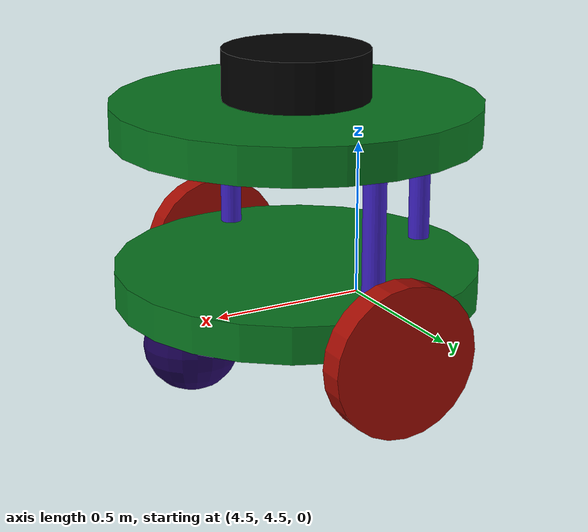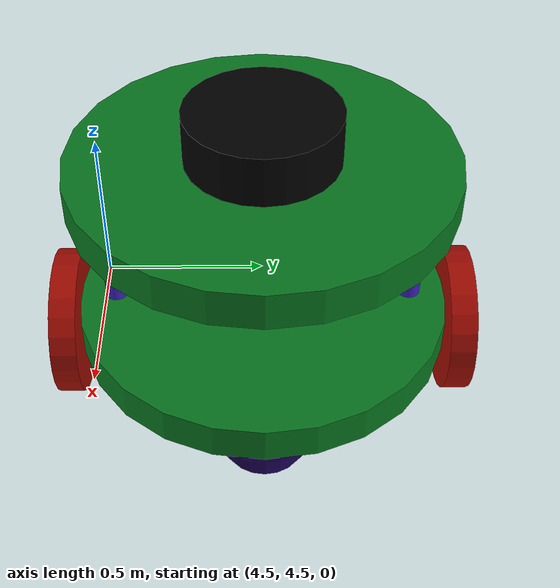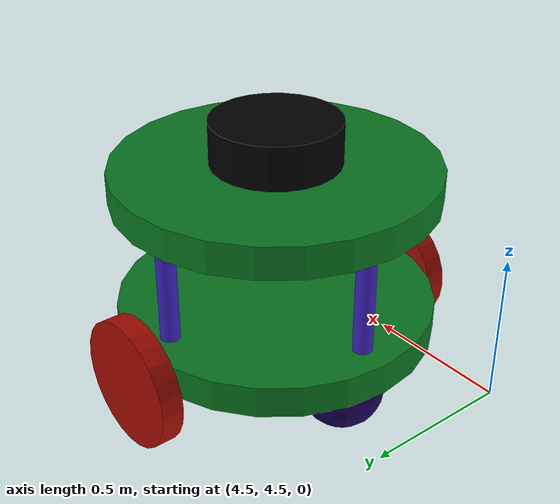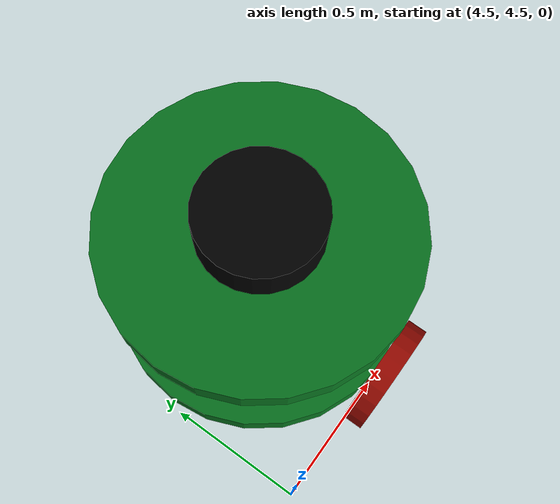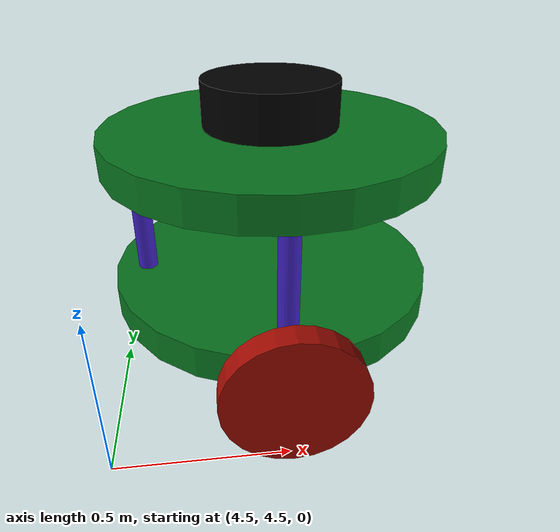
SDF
<sdf version="1.7">
 <world name="world_demo">
  <physics name="1ms" type="ignored">
   <max_step_size>0.01</max_step_size>
   <real_time_factor>1</real_time_factor>
  </physics>
  <plugin name="ignition::gazebo::systems::Physics" filename="libignition-gazebo-physics-system.so"/>
  <plugin name="ignition::gazebo::systems::UserCommands" filename="libignition-gazebo-user-commands-system.so"/>
  <plugin name="ignition::gazebo::systems::SceneBroadcaster" filename="libignition-gazebo-scene-broadcaster-system.so"/>
  <plugin name="ignition::gazebo::systems::Imu" filename="ignition-gazebo-imu-system"/>
  <plugin name="ignition::gazebo::systems::Sensors" filename="ignition-gazebo-sensors-system">
   <render_engine>ogre2</render_engine>
  </plugin>
  <scene>
   <ambient>1 1 1 1</ambient>
   <background>0.3 0.7 0.9 1</background>
   <shadows>0</shadows>
   <grid>1</grid>
  </scene>
  <model name="ground_plane">
   <static>1</static>
   <link name="link">
    <collision name="collision">
     <geometry><plane><normal>0 0 1</normal><size>1 1</size></plane></geometry>
    </collision>
   </link>
  </model>
  <model name="depot_collision">
   <static>1</static>
   <pose>7.19009 1.09982 0 0 0 0</pose>
   <link name="collision_link">
    <collision name="wall1">
     <pose>0 -7.6129 4.5 0 0 0</pose>
     <geometry><box><size>30.167 0.08 9</size></box></geometry>
    </collision>
    <collision name="wall2">
     <pose>0 7.2875 4.5 0 0 0</pose>
     <geometry><box><size>30.167 0.08 9</size></box></geometry>
    </collision>
    <collision name="wall3">
     <pose>-15 0 4.5 0 0 0</pose>
     <geometry><box><size>0.08 15.360 9</size></box></geometry>
    </collision>
    <collision name="wall4">
     <pose>15 0 4.5 0 0 0</pose>
     <geometry><box><size>0.08 15.360 9</size></box></geometry>
    </collision>
    <collision name="boxes1">
     <pose>0.22268 -4.7268 0.68506 0 0 0</pose>
     <geometry><box><size>1.288 1.422 1.288</size></box></geometry>
    </collision>
    <collision name="boxes2">
     <pose>3.1727 -4.7268 0.68506 0 0 0</pose>
     <geometry><box><size>1.288 1.422 1.288</size></box></geometry>
    </collision>
    <collision name="boxes3">
     <pose>5.95268 -4.7268 0.68506 0 0 0</pose>
     <geometry><box><size>1.288 1.422 1.288</size></box></geometry>
    </collision>
    <collision name="boxes4">
     <pose>8.55887 -4.7268 0.68506 0 0 0</pose>
     <geometry><box><size>1.288 1.422 1.288</size></box></geometry>
    </collision>
    <collision name="boxes5">
     <pose>11.326 -4.7268 0.68506 0 0 0</pose>
     <geometry><box><size>1.288 1.422 1.288</size></box></geometry>
    </collision>
    <collision name="boxes6">
     <pose>0.22268 -2.37448 0.68506 0 0 0</pose>
     <geometry><box><size>1.288 1.422 1.288</size></box></geometry>
    </collision>
    <collision name="boxes7">
     <pose>3.1727 -2.37448 0.68506 0 0 0</pose>
     <geometry><box><size>1.288 1.422 1.288</size></box></geometry>
    </collision>
    <collision name="boxes8">
     <pose>5.95268 -2.37448 0.68506 0 0 0</pose>
     <geometry><box><size>1.288 1.422 1.288</size></box></geometry>
    </collision>
    <collision name="boxes9">
     <pose>8.55887 -2.37448 0.68506 0 0 0</pose>
     <geometry><box><size>1.288 1.422 1.288</size></box></geometry>
    </collision>
    <collision name="boxes10">
     <pose>11.326 -2.37448 0.68506 0 0 0</pose>
     <geometry><box><size>1.288 1.422 1.288</size></box></geometry>
    </collision>
    <collision name="boxes11">
     <pose>-1.2268 4.1557 0.68506 0 0 -1.02799893</pose>
     <geometry><box><size>1.288 1.422 1.288</size></box></geometry>
    </collision>
    <collision name="pilar1">
     <pose>-7.5402 3.6151 1 0 0 0</pose>
     <geometry><box><size>0.465 0.465 2</size></box></geometry>
    </collision>
    <collision name="pilar2">
     <pose>7.4575 3.6151 1 0 0 0</pose>
     <geometry><box><size>0.465 0.465 2</size></box></geometry>
    </collision>
    <collision name="pilar3">
     <pose>-7.5402 -3.8857 1 0 0 0</pose>
     <geometry><box><size>0.465 0.465 2</size></box></geometry>
    </collision>
    <collision name="pilar4">
     <pose>7.4575 -3.8857 1 0 0 0</pose>
     <geometry><box><size>0.465 0.465 2</size></box></geometry>
    </collision>
    <collision name="pallet_mover1">
     <pose>-0.6144 -2.389 0.41838 0 0 0</pose>
     <geometry><box><size>0.363 0.440 0.719</size></box></geometry>
    </collision>
    <collision name="pallet_mover2">
     <pose>-1.6004 4.8225 0.41838 0 0 0</pose>
     <geometry><box><size>0.363 0.244 0.719</size></box></geometry>
    </collision>
    <collision name="stairs">
     <pose>13.018 3.1652 0.25 0 0 0</pose>
     <geometry><box><size>1.299 0.6 0.5</size></box></geometry>
    </collision>
    <collision name="shelfs1">
     <pose>1.4662 -0.017559 0.5 0 0 0</pose>
     <geometry><cylinder><radius>0.03</radius><length>1</length></cylinder></geometry>
    </collision>
    <collision name="shelfs2">
     <pose>2.6483 -0.017559 0.5 0 0 0</pose>
     <geometry><cylinder><radius>0.03</radius><length>1</length></cylinder></geometry>
    </collision>
    <collision name="shelfs3">
     <pose>5.3247 -0.017559 0.5 0 0 0</pose>
     <geometry><cylinder><radius>0.03</radius><length>1</length></cylinder></geometry>
    </collision>
    <collision name="shelfs4">
     <pose>6.5063 -0.017559 0.5 0 0 0</pose>
     <geometry><cylinder><radius>0.03</radius><length>1</length></cylinder></geometry>
    </collision>
    <collision name="shelfs5">
     <pose>9.0758 -0.017559 0.5 0 0 0</pose>
     <geometry><cylinder><radius>0.03</radius><length>1</length></cylinder></geometry>
    </collision>
    <collision name="shelfs6">
     <pose>10.258 -0.017559 0.5 0 0 0</pose>
     <geometry><cylinder><radius>0.03</radius><length>1</length></cylinder></geometry>
    </collision>
    <collision name="shelfs7">
     <pose>1.4662 2.5664 0.5 0 0 0</pose>
     <geometry><cylinder><radius>0.03</radius><length>1</length></cylinder></geometry>
    </collision>
    <collision name="shelfs8">
     <pose>2.6483 2.5664 0.5 0 0 0</pose>
     <geometry><cylinder><radius>0.03</radius><length>1</length></cylinder></geometry>
    </collision>
    <collision name="shelfs9">
     <pose>5.3247 2.5664 0.5 0 0 0</pose>
     <geometry><cylinder><radius>0.03</radius><length>1</length></cylinder></geometry>
    </collision>
    <collision name="shelfs10">
     <pose>6.5063 2.5664 0.5 0 0 0</pose>
     <geometry><cylinder><radius>0.03</radius><length>1</length></cylinder></geometry>
    </collision>
    <collision name="shelfs11">
     <pose>9.0758 2.5664 0.5 0 0 0</pose>
     <geometry><cylinder><radius>0.03</radius><length>1</length></cylinder></geometry>
    </collision>
    <collision name="shelfs12">
     <pose>10.258 2.5664 0.5 0 0 0</pose>
     <geometry><cylinder><radius>0.03</radius><length>1</length></cylinder></geometry>
    </collision>
    <collision name="shelfs13">
     <pose>1.4662 5.1497 0.5 0 0 0</pose>
     <geometry><cylinder><radius>0.03</radius><length>1</length></cylinder></geometry>
    </collision>
    <collision name="shelfs14">
     <pose>2.6483 5.1497 0.5 0 0 0</pose>
     <geometry><cylinder><radius>0.03</radius><length>1</length></cylinder></geometry>
    </collision>
    <collision name="shelfs15">
     <pose>5.3247 5.1497 0.5 0 0 0</pose>
     <geometry><cylinder><radius>0.03</radius><length>1</length></cylinder></geometry>
    </collision>
    <collision name="shelfs16">
     <pose>6.5063 5.1497 0.5 0 0 0</pose>
     <geometry><cylinder><radius>0.03</radius><length>1</length></cylinder></geometry>
    </collision>
    <collision name="shelfs17">
     <pose>9.0758 5.1497 0.5 0 0 0</pose>
     <geometry><cylinder><radius>0.03</radius><length>1</length></cylinder></geometry>
    </collision>
    <collision name="shelfs18">
     <pose>10.258 5.1497 0.5 0 0 0</pose>
     <geometry><cylinder><radius>0.03</radius><length>1</length></cylinder></geometry>
    </collision>
   </link>
  </model>
  <include>
   <uri>file://sub_models/beetlebot_robot.sdf</uri>
   <pose relative_to="world">5 5 0 0 0 0</pose>
  </include>
 </world>
</sdf>

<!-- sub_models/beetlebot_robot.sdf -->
<sdf version="1.10">
        <model name="beetlebot" canonical_link='base_link'>
            <pose >0 0 0 0 0 0</pose>

            <link name="base_link">
                <pose relative_to='__model__'>0 0 0.3 0 0 0</pose>
                <visual name='base_link visual'>
                    <pose>0 0 0 0 0 0</pose>
                    <geometry>
                        <cylinder>
                            <radius>0.5</radius>
                            <length>0.1</length>
                        </cylinder>
                    </geometry>
                    <material>
                        <ambient>0.033104766565152086 0.46778379610254284 0.12477181755144427 1</ambient>
                        <diffuse>0.033104766565152086 0.46778379610254284 0.12477181755144427 1</diffuse>
                        <specular>0.1 0.1 0.1 1</specular>
                        <emissive>0 0 0 1</emissive>
                    </material>
                </visual>
                <collision name='base_link collision'>
                    <pose>0 0 0 0 0 0</pose>
                    <geometry>
                        <cylinder>
                            <radius>0.5</radius>
                            <length>0.1</length>
                        </cylinder>
                    </geometry>
                </collision>
                <inertial>
                    <mass>1</mass>
                    <inertia>
                        <ixx>0.3333333333333333</ixx>
                        <ixy>0</ixy>
                        <ixz>0</ixz>
                        <iyy>0.5</iyy>
                        <iyz>0</iyz>
                        <izz>0.3333333333333333</izz>
                    </inertia>
                </inertial>
            </link>

            <!-- right wheel link -->
            <link name="wheel_right">
                <pose relative_to='base_link'>0 0.53 -0.05 1.5707963267948963 0 0</pose>
                <visual name='wheel_right visual'>
                    <pose>0 0 0 0 0 0</pose>
                    <geometry>
                        <cylinder>
                            <radius>0.2</radius>
                            <length>0.07</length>
                        </cylinder>
                    </geometry>
                    <material>
                        <ambient>0.6375968739867731 0.04373502925049377 0.008023192982520563 1</ambient>
                        <diffuse>0.6375968739867731 0.04373502925049377 0.008023192982520563 1</diffuse>
                        <specular>0.1 0.1 0.1 1</specular>
                        <emissive>0 0 0 1</emissive>
                    </material>
                </visual>
                <collision name='wheel_right collision'>
                    <pose>0 0 0 0 0 0</pose>
                    <geometry>
                        <cylinder>
                            <radius>0.2</radius>
                            <length>0.07</length>
                        </cylinder>
                    </geometry>
                </collision>
                <inertial>
                    <mass>1</mass>
                    <inertia>
                        <ixx>0.3333333333333333</ixx>
                        <ixy>0</ixy>
                        <ixz>0</ixz>
                        <iyy>0.5</iyy>
                        <iyz>0</iyz>
                        <izz>0.3333333333333333</izz>
                    </inertia>
                </inertial>
            </link>

            <!-- right wheel joint -->
            <joint name="base_link_to_wheel_right" type="revolute">
                <pose relative_to='wheel_right'>0 0 0 0 0 0</pose>
                <parent>base_link</parent>
                <child>wheel_right</child>
                <axis>
                    <xyz expressed_in='wheel_right'>0 0 1</xyz>
                </axis>
            </joint>

            <!-- left wheel link -->
            <link name="wheel_left">
                <pose relative_to='base_link'>0 -0.53 -0.05 1.5707963267948963 0 0</pose>
                <visual name='wheel_left visual'>
                    <pose>0 0 0 0 0 0</pose>
                    <geometry>
                        <cylinder>
                            <radius>0.2</radius>
                            <length>0.07</length>
                        </cylinder>
                    </geometry>
                    <material>
                        <ambient>0.6375968739867731 0.04373502925049377 0.008023192982520563 1</ambient>
                        <diffuse>0.6375968739867731 0.04373502925049377 0.008023192982520563 1</diffuse>
                        <specular>0.1 0.1 0.1 1</specular>
                        <emissive>0 0 0 1</emissive>
                    </material>
                </visual>
                <collision name='wheel_left collision'>
                    <pose>0 0 0 0 0 0</pose>
                    <geometry>
                        <cylinder>
                            <radius>0.2</radius>
                            <length>0.07</length>
                        </cylinder>
                    </geometry>
                </collision>
                <inertial>
                    <mass>1</mass>
                    <inertia>
                        <ixx>0.3333333333333333</ixx>
                        <ixy>0</ixy>
                        <ixz>0</ixz>
                        <iyy>0.5</iyy>
                        <iyz>0</iyz>
                        <izz>0.3333333333333333</izz>
                    </inertia>
                </inertial>
            </link>

            <!-- left wheel joint -->
            <joint name="base_link_to_wheel_left" type="revolute">
                <pose relative_to='wheel_left'>0 0 0 0 0 0</pose>
                <parent>base_link</parent>
                <child>wheel_left</child>
                <axis>
                    <xyz expressed_in='wheel_left'>0 0 1</xyz>
                </axis>
            </joint>

                <!-- top_base link -->
            <link name="top_base">
                <!-- Pose relative to base_link -->
                <pose relative_to='base_link'>0 0 0.45 0 0 0</pose>

                <!-- Visual representation of top_base -->
                <visual name='top_base visual'>
                    <pose>0 0 0 0 0 0</pose>
                    <geometry>
                        <cylinder>
                            <radius>0.5</radius>
                            <length>0.1</length>
                        </cylinder>
                    </geometry>
                    <material>
                        <ambient>0.033104766565152086 0.46778379610254284 0.12477181755144427 1</ambient>
                        <diffuse>0.033104766565152086 0.46778379610254284 0.12477181755144427 1</diffuse>
                        <specular>0.1 0.1 0.1 1</specular>
                        <emissive>0 0 0 1</emissive>
                    </material>
                </visual>

                <!-- Collision properties for top_base -->
                <collision name='top_base collision'>
                    <pose>0 0 0 0 0 0</pose>
                    <geometry>
                        <cylinder>
                            <radius>0.5</radius>
                            <length>0.1</length>
                        </cylinder>
                    </geometry>
                </collision>

                <!-- Inertial properties of top_base -->
                <inertial>
                    <mass>1</mass>
                    <inertia>
                        <ixx>0.3333333333333333</ixx>
                        <ixy>0</ixy>
                        <ixz>0</ixz>
                        <iyy>0.5</iyy>
                        <iyz>0</iyz>
                        <izz>0.3333333333333333</izz>
                    </inertia>
                </inertial>
            </link>

            <!-- top_base joint -->
            <joint name="base_link_to_top_base" type="fixed">
                <!-- Pose relative to top_base -->
                <pose relative_to='top_base'>0 0 0.45 0 0 0</pose>
                <parent>base_link</parent>
                <child>top_base</child>
            </joint>

            <!-- front_caster link -->
            <link name="front_caster">
                <!-- Pose relative to base_link -->
                <pose relative_to='base_link'>0.32 0 -0.13 0 0 -0.0008726646259971647</pose>

                <!-- Visual representation of front_caster -->
                <visual name='front_caster visual'>
                    <pose>0 0 0 0 0 0</pose>
                    <geometry>
                        <sphere>
                            <radius>0.13</radius>
                        </sphere>
                    </geometry>
                    <material>
                        <ambient>0.10702310296918527 0.0069954101845983935 0.3371636150376657 1</ambient>
                        <diffuse>0.10702310296918527 0.0069954101845983935 0.3371636150376657 1</diffuse>
                        <specular>0.1 0.1 0.1 1</specular>
                        <emissive>0 0 0 1</emissive>
                    </material>
                </visual>

                <!-- Collision properties for front_caster -->
                <collision name='front_caster collision'>
                    <pose>0 0 0 0 0 0</pose>
                    <geometry>
                        <sphere>
                            <radius>0.13</radius>
                        </sphere>
                    </geometry>
                </collision>

                <!-- Inertial properties of front_caster -->
                <inertial>
                    <mass>1</mass>
                    <inertia>
                        <ixx>0.4</ixx>
                        <ixy>0</ixy>
                        <ixz>0</ixz>
                        <iyy>0.4</iyy>
                        <iyz>0</iyz>
                        <izz>0.4</izz>
                    </inertia>
                </inertial>
            </link>

            <!-- front_caster joint -->
            <joint name="base_link_to_front_caster" type="fixed">
                <!-- Pose relative to front_caster -->
                <pose relative_to='front_caster'>0 0 0 0 0 0</pose>
                <parent>base_link</parent>
                <child>front_caster</child>
            </joint>

            <!-- rear_caster link -->
            <link name="rear_caster">
                <!-- Pose relative to base_link -->
                <pose relative_to='base_link'>-0.32 0 -0.13 0 0 -0.0008726646259971647</pose>

                <!-- Visual representation of rear_caster -->
                <visual name='rear_caster visual'>
                    <pose>0 0 0 0 0 0</pose>
                    <geometry>
                        <sphere>
                            <radius>0.13</radius>
                        </sphere>
                    </geometry>
                    <material>
                        <ambient>0.10702310296918527 0.0069954101845983935 0.3371636150376657 1</ambient>
                        <diffuse>0.10702310296918527 0.0069954101845983935 0.3371636150376657 1</diffuse>
                        <specular>0.1 0.1 0.1 1</specular>
                        <emissive>0 0 0 1</emissive>
                    </material>
                </visual>

                <!-- Collision properties for rear_caster -->
                <collision name='rear_caster collision'>
                    <pose>0 0 0 0 0 0</pose>
                    <geometry>
                        <sphere>
                            <radius>0.13</radius>
                        </sphere>
                    </geometry>
                </collision>

                <!-- Inertial properties of rear_caster -->
                <inertial>
                    <mass>1</mass>
                    <inertia>
                        <ixx>0.4</ixx>
                        <ixy>0</ixy>
                        <ixz>0</ixz>
                        <iyy>0.4</iyy>
                        <iyz>0</iyz>
                        <izz>0.4</izz>
                    </inertia>
                </inertial>
            </link>

            <!-- rear_caster joint -->
            <joint name="base_link_to_rear_caster" type="fixed">
                <!-- Pose relative to rear_caster -->
                <pose relative_to='rear_caster'>0 0 0 0 0 0</pose>
                <parent>base_link</parent>
                <child>rear_caster</child>
            </joint>

            <!-- left_bar link -->
            <link name="left_bar">
                <!-- Pose relative to base_link -->
                <pose relative_to='base_link'>0 -0.4 0.2058808723746403 0 0 0</pose>

                <!-- Visual representation of left_bar -->
                <visual name='left_bar visual'>
                    <pose>0 0 0 0 0 0</pose>
                    <geometry>
                        <cylinder>
                            <radius>0.03</radius>
                            <length>0.5</length>
                        </cylinder>
                    </geometry>
                    <material>
                        <ambient>0.23839757380151394 0.12743768042608497 0.7529422167708612 1</ambient>
                        <diffuse>0.23839757380151394 0.12743768042608497 0.7529422167708612 1</diffuse>
                        <specular>0.1 0.1 0.1 1</specular>
                        <emissive>0 0 0 1</emissive>
                    </material>
                </visual>

                <!-- Collision properties for left_bar -->
                <collision name='left_bar collision'>
                    <pose>0 0 0 0 0 0</pose>
                    <geometry>
                        <cylinder>
                            <radius>0.03</radius>
                            <length>0.5</length>
                        </cylinder>
                    </geometry>
                </collision>

                <!-- Inertial properties of left_bar -->
                <inertial>
                    <mass>1</mass>
                    <inertia>
                        <ixx>0.3333333333333333</ixx>
                        <ixy>0</ixy>
                        <ixz>0</ixz>
                        <iyy>0.5</iyy>
                        <iyz>0</iyz>
                        <izz>0.3333333333333333</izz>
                    </inertia>
                </inertial>
            </link>

            <!-- left_bar joint -->
            <joint name="base_link_to_left_bar" type="fixed">
                <!-- Pose relative to left_bar -->
                <pose relative_to='left_bar'>0 0 0 0 0 0</pose>
                <parent>base_link</parent>
                <child>left_bar</child>
            </joint>

            <!-- right_bar link -->
            <link name="right_bar">
                <!-- Pose relative to base_link -->
                <pose relative_to='base_link'>0 0.4 0.2058808723746403 0 0 0</pose>

                <!-- Visual representation of right_bar -->
                <visual name='right_bar visual'>
                    <pose>0 0 0 0 0 0</pose>
                    <geometry>
                        <cylinder>
                            <radius>0.03</radius>
                            <length>0.5</length>
                        </cylinder>
                    </geometry>
                    <material>
                        <ambient>0.23839757380151394 0.12743768042608497 0.7529422167708612 1</ambient>
                        <diffuse>0.23839757380151394 0.12743768042608497 0.7529422167708612 1</diffuse>
                        <specular>0.1 0.1 0.1 1</specular>
                        <emissive>0 0 0 1</emissive>
                    </material>
                </visual>

                <!-- Collision properties for right_bar -->
                <collision name='right_bar collision'>
                    <pose>0 0 0 0 0 0</pose>
                    <geometry>
                        <cylinder>
                            <radius>0.03</radius>
                            <length>0.5</length>
                        </cylinder>
                    </geometry>
                </collision>

                <!-- Inertial properties of right_bar -->
                <inertial>
                    <mass>1</mass>
                    <inertia>
                        <ixx>0.3333333333333333</ixx>
                        <ixy>0</ixy>
                        <ixz>0</ixz>
                        <iyy>0.5</iyy>
                        <iyz>0</iyz>
                        <izz>0.3333333333333333</izz>
                    </inertia>
                </inertial>
            </link>

            <!-- right_bar joint -->
            <joint name="base_link_to_right_bar" type="fixed">
                <!-- Pose relative to right_bar -->
                <pose relative_to='right_bar'>0 0 0 0 0 0</pose>
                <parent>base_link</parent>
                <child>right_bar</child>
            </joint>

            <!-- rear_bar link -->
            <link name="rear_bar">
                <!-- Pose relative to base_link -->
                <pose relative_to='base_link'>-0.4 0 0.2058808723746403 0 0 0</pose>

                <!-- Visual representation of rear_bar -->
                <visual name='rear_bar visual'>
                    <pose>0 0 0 0 0 0</pose>
                    <geometry>
                        <cylinder>
                            <radius>0.03</radius>
                            <length>0.5</length>
                        </cylinder>
                    </geometry>
                    <material>
                        <ambient>0.23839757380151394 0.12743768042608497 0.7529422167708612 1</ambient>
                        <diffuse>0.23839757380151394 0.12743768042608497 0.7529422167708612 1</diffuse>
                        <specular>0.1 0.1 0.1 1</specular>
                        <emissive>0 0 0 1</emissive>
                    </material>
                </visual>

                <!-- Collision properties for rear_bar -->
                <collision name='rear_bar collision'>
                    <pose>0 0 0 0 0 0</pose>
                    <geometry>
                        <cylinder>
                            <radius>0.03</radius>
                            <length>0.5</length>
                        </cylinder>
                    </geometry>
                </collision>

                <!-- Inertial properties of rear_bar -->
                <inertial>
                    <mass>1</mass>
                    <inertia>
                        <ixx>0.3333333333333333</ixx>
                        <ixy>0</ixy>
                        <ixz>0</ixz>
                        <iyy>0.5</iyy>
                        <iyz>0</iyz>
                        <izz>0.3333333333333333</izz>
                    </inertia>
                </inertial>
            </link>

            <!-- rear_bar joint -->
            <joint name="base_link_to_rear_bar" type="fixed">
                <!-- Pose relative to rear_bar -->
                <pose relative_to='rear_bar'>0 0 0 0 0 0</pose>
                <parent>base_link</parent>
                <child>rear_bar</child>
            </joint>

            <!-- include lidar sensor model file  -->

            <frame name="lidar_frame" attached_to='lidar'>
                <pose>0.8 0 0.5 0 0 0</pose>
            </frame>

            <link name="lidar">
                <pose relative_to='base_link'>0 0 0.57 0 0 0</pose>
                <visual name='lidar visual'>
                    <pose>0 0 0 0 0 0</pose>
                    <geometry>
                        <cylinder>
                            <radius>0.2</radius>
                            <length>0.13538975482266932</length>
                        </cylinder>
                    </geometry>
                    <material>
                        <ambient>0 0 0 1</ambient>
                        <diffuse>0 0 0 1</diffuse>
                        <specular>0.1 0.1 0.1 1</specular>
                        <emissive>0 0 0 1</emissive>
                    </material>
                </visual>
                <collision name='lidar collision'>
                    <pose>0 0 0 0 0 0</pose>
                    <geometry>
                        <cylinder>
                            <radius>0.2</radius>
                            <length>0.13538975482266932</length>
                        </cylinder>
                    </geometry>
                </collision>
                <inertial>
                    <mass>1</mass>
                    <inertia>
                        <ixx>0.3333333333333333</ixx>
                        <ixy>0</ixy>
                        <ixz>0</ixz>
                        <iyy>0.5</iyy>
                        <iyz>0</iyz>
                        <izz>0.3333333333333333</izz>
                    </inertia>
                </inertial>
                <sensor name='gpu_lidar' type='gpu_lidar'>"
                    <pose relative_to='lidar_frame'>0 0 0 0 0 0</pose>
                    <topic>lidar</topic>
                    <update_rate>10</update_rate>
                    <ray>
                        <scan>
                            <horizontal>
                                <samples>640</samples>
                                <resolution>1</resolution>
                                <min_angle>-1.396263</min_angle>
                                <max_angle>1.396263</max_angle>
                            </horizontal>
                            <vertical>
                                <samples>1</samples>
                                <resolution>0.01</resolution>
                                <min_angle>0</min_angle>
                                <max_angle>0</max_angle>
                            </vertical>
                        </scan>
                        <range>
                            <min>0.08</min>
                            <max>10.0</max>
                            <resolution>0.01</resolution>
                        </range>
                    </ray>
                    <always_on>1</always_on>
                    <visualize>true</visualize>
                </sensor>
            </link>

            <joint name="base_link_to_lidar" type="fixed">
                <pose relative_to='lidar'>0 0 0 0 0 0</pose>
                <parent>base_link</parent>
                <child>lidar</child>
            </joint>

            <!-- include imu sensor model file  -->
            <include>
                <uri>file://sub_models/imu_sensor.sdf</uri>
                <pose relative_to="base_link"> -0.1 0.0 0.1 0 0 0</pose>
            </include>

            <joint name="base_link_to_imu_sensor" type="fixed">
                <pose relative_to="imu_sensor_model::imu_sensor">0 0 0 0 0 0</pose>
                <parent>base_link</parent>
                <child>imu_sensor_model::imu_sensor</child>
            </joint>

        </model>
    </sdf>

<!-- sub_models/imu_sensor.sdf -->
<sdf version="1.10">
    <model name="imu_sensor_model">
            <link name="imu_sensor">
                <pose>0.0 0 0 0 0 0</pose>
                <visual name="imu_sensor_visual">
                    <pose>0 0 0 0 0 0</pose>
                    <geometry>
                        <box>
                            <size>0.1 0.1 0.1</size>
                        </box>
                    </geometry>
                    <material>
                        <ambient>0.2874408377161099 0.9559733532482866 0.913098651791473 1</ambient>
                        <diffuse>0.2874408377161099 0.9559733532482866 0.913098651791473 1</diffuse>
                        <specular>0.1 0.1 0.1 1</specular>
                        <emissive>0 0 0 1</emissive>
                    </material>
                </visual>
                <collision name="imu_sensor_collision">
                    <pose>0 0 0 0 0 0</pose>
                    <geometry>
                        <box>
                            <size>0.1 0.1 0.1</size>
                        </box>
                    </geometry>
                </collision>
                <inertial>
                    <mass>1</mass>
                    <inertia>
                        <ixx>0.16666666666666666</ixx>
                        <ixy>0</ixy>
                        <ixz>0</ixz>
                        <iyy>0.16666666666666666</iyy>
                        <iyz>0</iyz>
                        <izz>0.16666666666666666</izz>
                    </inertia>
                </inertial>
                <sensor name="imu_sensor" type="imu">
                    <always_on>1</always_on>
                    <update_rate>1</update_rate>
                    <visualize>true</visualize>
                    <topic>imu</topic>
                </sensor>

            </link>

    </model>

</sdf>
